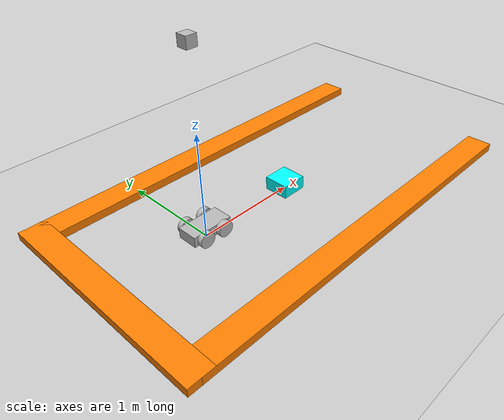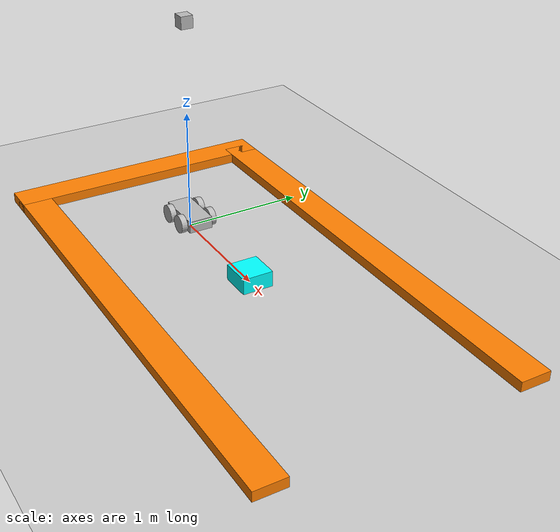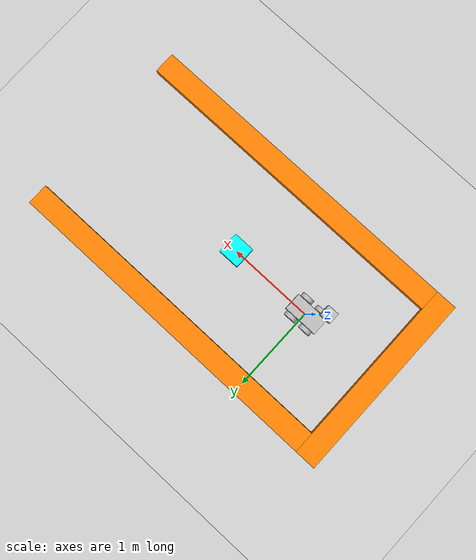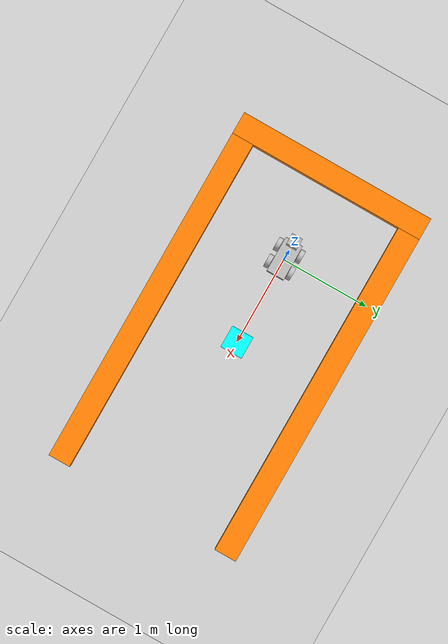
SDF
<?xml version="1.0" ?>
<sdf version="1.4">
<world name="rover_world">
	<light name='sun' type='directional'>
		<cast_shadows>1</cast_shadows>
		<pose>0 0 10 0 -0 0</pose>
		<diffuse>0.8 0.8 0.8 1</diffuse>
		<specular>0.2 0.2 0.2 1</specular>
		<attenuation>
			<range>1000</range>
			<constant>0.9</constant>
			<linear>0.01</linear>
			<quadratic>0.001</quadratic>
		</attenuation>
		<direction>-0.5 0.1 -0.9</direction>
	</light>

	<!-- Ground Plane -->
	<include>
		<uri>model://ground_plane</uri>
	</include>

	<!--    ROVER    -->
	<model name="rover">
		<static>false</static>

		<link name='chassis'>
			<pose>0 0 .1 0 0 0</pose>

			<collision name='collision'>
				<geometry>
					<box>
						<size>.4 .2 .1</size>
					</box>
				</geometry>
			</collision>

			<visual name='visual'>
				<geometry>
					<box>
						<size>.4 .2 .1</size>
					</box>
				</geometry>
			</visual>

			<sensor name='my_contact' type='contact'>
				<contact>
					<collision>collision</collision>
				</contact>
			</sensor>
		</link>

		<link name="front_left_wheel">
			<pose>0.1 0.13 0.1 0 1.5707 1.5707</pose>
			<collision name="collision">
				<geometry>
					<cylinder>
						<radius>.075</radius>
						<length>.05</length>
					</cylinder>
				</geometry>
			</collision>
			<visual name="visual">
				<geometry>
					<cylinder>
						<radius>.075</radius>
						<length>.05</length>
					</cylinder>
				</geometry>
			</visual>
		</link>

		<link name="front_right_wheel">
			<pose>0.1 -0.13 0.1 0 1.5707 1.5707</pose>
			<collision name="collision">
				<geometry>
					<cylinder>
						<radius>.075</radius>
						<length>.05</length>
					</cylinder>
				</geometry>
			</collision>
			<visual name="visual">
				<geometry>
					<cylinder>
						<radius>.075</radius>
						<length>.05</length>
					</cylinder>
				</geometry>
			</visual>
		</link>

		<link name="back_left_wheel">
			<pose>-0.1 0.13 0.1 0 1.5707 1.5707</pose>
			<collision name="collision">
				<geometry>
					<cylinder>
						<radius>.075</radius>
						<length>.05</length>
					</cylinder>
				</geometry>
			</collision>
			<visual name="visual">
				<geometry>
					<cylinder>
						<radius>.075</radius>
						<length>.05</length>
					</cylinder>
				</geometry>
			</visual>
		</link>

		<link name="back_right_wheel">
			<pose>-0.1 -0.13 0.1 0 1.5707 1.5707</pose>
			<collision name="collision">
				<geometry>
					<cylinder>
						<radius>.075</radius>
						<length>.05</length>
					</cylinder>
				</geometry>
			</collision>
			<visual name="visual">
				<geometry>
					<cylinder>
						<radius>.075</radius>
						<length>.05</length>
					</cylinder>
				</geometry>
			</visual>
		</link>

		<joint type="revolute" name="front_left_wheel_hinge">
			<pose>0 0 -0.03 0 0 0</pose>
			<child>front_left_wheel</child>
			<parent>chassis</parent>
			<axis>
				<xyz>0 1 0</xyz>
			</axis>
		</joint>

		<joint type="revolute" name="front_right_wheel_hinge">
			<pose>0 0 0.03 0 0 0</pose>
			<child>front_right_wheel</child>
			<parent>chassis</parent>
			<axis>
				<xyz>0 1 0</xyz>
			</axis>
		</joint>

		<joint type="revolute" name="back_left_wheel_hinge">
			<pose>0 0 -0.03 0 0 0</pose>
			<child>back_left_wheel</child>
			<parent>chassis</parent>
			<axis>
				<xyz>0 1 0</xyz>
			</axis>
		</joint>

		<joint type="revolute" name="back_right_wheel_hinge">
			<pose>0 0 0.03 0 0 0</pose>
			<child>back_right_wheel</child>
			<parent>chassis</parent>
			<axis>
				<xyz>0 1 0</xyz>
			</axis>
		</joint>

		<!-- CAMERA -->
		<link name="camera_link">
			<gravity>false</gravity>
			<pose>0.0 0.0 1.75 0 1.57079632679 0</pose>
			<inertial>
				<mass>0.1</mass>
			</inertial>
			<visual name="visual">
				<geometry>
					<box>
						<size>0.1 0.1 0.1</size>
					</box>
				</geometry>
			</visual>
			<sensor name="camera" type="camera">
				<camera>
					<horizontal_fov>1.047</horizontal_fov>
					<image>
						<width>64</width>
						<height>64</height>
					</image>
					<clip>
						<near>0.1</near>
						<far>100</far>
					</clip>
				</camera>
				<always_on>1</always_on>
				<update_rate>10</update_rate>
				<visualize>true</visualize>
			</sensor>
		</link>

		<joint name="camera_joint" type="revolute">
			<parent>chassis</parent>
			<child>camera_link</child>
			<pose>0.0 0.0 0.0 0.0 0.0 0.0</pose>
			<axis>
				<xyz>0.1 0.0 0.0</xyz>
			</axis>
		 </joint>

		<plugin name="RoverPlugin" filename="libgazeboRoverPlugin.so" />
	</model>

	<!-- OBSTACLES  -->

	<model name="goal">
		<link name="link">
		<pose>1.0 0.0 0.0 0 0 0</pose>

		<collision name="box_collision">
			<geometry>
				<box>
					<size>0.25 0.25 0.25</size>
				</box>
			</geometry>
		</collision>

		<visual name="visual">
			<geometry>
				<box>
					<size>0.25 0.25 0.25</size>
				</box>
			</geometry>
			<material>
				<ambient>0.3 0.3 0.3 1</ambient>
				<diffuse>0.0 1.0 1.0 1</diffuse>
				<specular>0.01 0.01 0.01 1</specular>
				<emissive>0 0 0 1</emissive>
				<shader type='vertex'>
					<normal_map>__default__</normal_map>
				</shader>
			</material>
		</visual>
		</link>

		<plugin name="PropPlugin" filename="libgazeboPropPlugin.so" />
	</model>

	<!--     MAZE      -->
	<model name="maze">
		<link name="wall_0">
			<pose>-1.0 0.0 0.0 0 0 0</pose>

			<collision name="box_collision">
				<geometry>
					<box>
						<size>0.25 2.25 0.15</size>
					</box>
				</geometry>
			</collision>

			<visual name="visual">
				<geometry>
					<box>
						<size>0.25 2.25 0.15</size>
					</box>
				</geometry>
				<material>
					<ambient>0.3 0.3 0.3 1</ambient>
					<diffuse>1.0 0.5 0.0 1</diffuse>
					<specular>0.01 0.01 0.01 1</specular>
					<emissive>0 0 0 1</emissive>
					<shader type='vertex'>
						<normal_map>__default__</normal_map>
					</shader>
				</material>
			</visual>
		</link>

		<link name="wall_1">
			<pose>1.0 1.0 0.0 0 0 0</pose>

			<collision name="box_collision">
				<geometry>
					<box>
						<size>4.0 0.25 0.15</size>
					</box>
				</geometry>
			</collision>

			<visual name="visual">
				<geometry>
					<box>
						<size>4.0 0.25 0.15</size>
					</box>
				</geometry>
				<material>
					<ambient>0.3 0.3 0.3 1</ambient>
					<diffuse>1.0 0.5 0.0 1</diffuse>
					<specular>0.01 0.01 0.01 1</specular>
					<emissive>0 0 0 1</emissive>
					<shader type='vertex'>
						<normal_map>__default__</normal_map>
					</shader>
				</material>
			</visual>
		</link>

		<link name="wall_2">
			<pose>1.0 -1.0 0.0 0 0 0</pose>

			<collision name="box_collision">
				<geometry>
					<box>
						<size>4.0 0.25 0.15</size>
					</box>
				</geometry>
			</collision>

			<visual name="visual">
				<geometry>
					<box>
						<size>4.0 0.25 0.15</size>
					</box>
				</geometry>
				<material>
					<ambient>0.3 0.3 0.3 1</ambient>
					<diffuse>1.0 0.5 0.0 1</diffuse>
					<specular>0.01 0.01 0.01 1</specular>
					<emissive>0 0 0 1</emissive>
					<shader type='vertex'>
						<normal_map>__default__</normal_map>
					</shader>
				</material>
			</visual>
		</link>
	</model>

</world>
</sdf>
